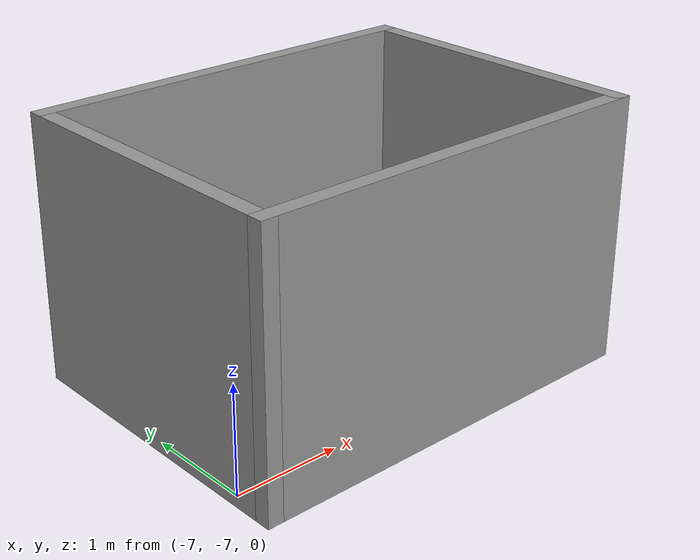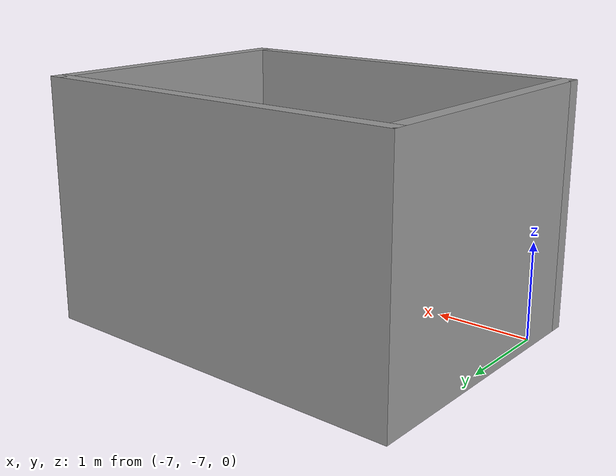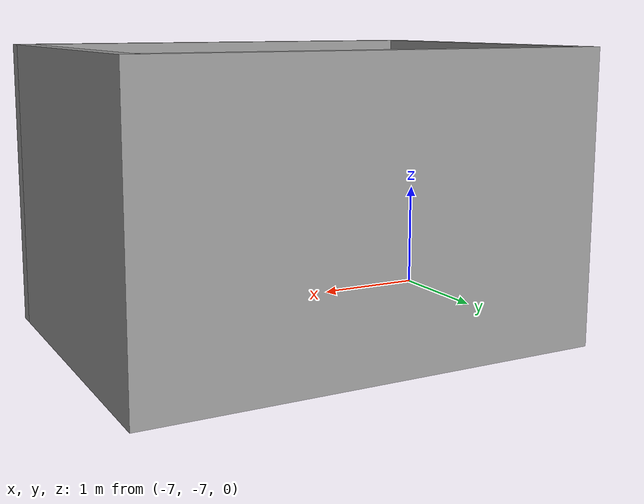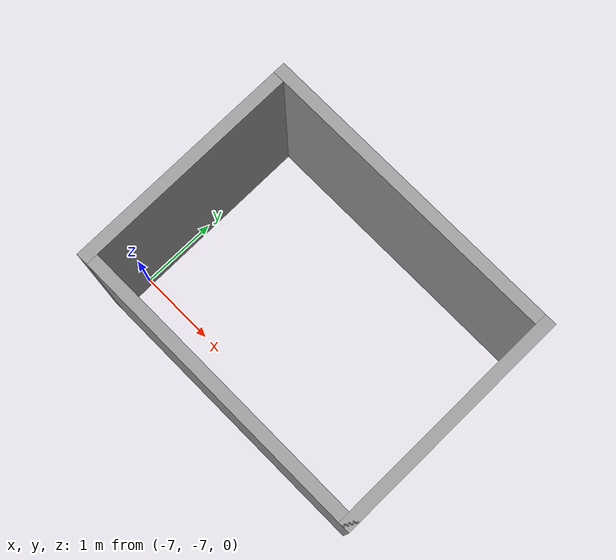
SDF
<?xml version='1.0'?>
<sdf version='1.7'>
  <model name='level0'>
    <pose>-3.54679 -3.74691 0 0 -0 0</pose>
    <link name='Wall_23'>
      <collision name='Wall_23_Collision'>
        <geometry>
          <box>
            <size>4 0.15 2.5</size>
          </box>
        </geometry>
        <pose>0 0 1.25 0 -0 0</pose>
      </collision>
      <visual name='Wall_23_Visual'>
        <pose>0 0 1.25 0 -0 0</pose>
        <geometry>
          <box>
            <size>4 0.15 2.5</size>
          </box>
        </geometry>
        <material>
          <script>
            <uri>file://media/materials/scripts/gazebo.material</uri>
            <name>Gazebo/Grey</name>
          </script>
          <ambient>1 1 1 1</ambient>
        </material>
        <meta>
          <layer>0</layer>
        </meta>
      </visual>
      <pose>-1.54679 -0.821908 0 0 -0 0</pose>
    </link>
    <link name='Wall_24'>
      <collision name='Wall_24_Collision'>
        <geometry>
          <box>
            <size>3 0.15 2.5</size>
          </box>
        </geometry>
        <pose>0 0 1.25 0 -0 0</pose>
      </collision>
      <visual name='Wall_24_Visual'>
        <pose>0 0 1.25 0 -0 0</pose>
        <geometry>
          <box>
            <size>3 0.15 2.5</size>
          </box>
        </geometry>
        <material>
          <script>
            <uri>file://media/materials/scripts/gazebo.material</uri>
            <name>Gazebo/Grey</name>
          </script>
          <ambient>1 1 1 1</ambient>
        </material>
        <meta>
          <layer>0</layer>
        </meta>
      </visual>
      <pose>0.378214 -2.24691 0 0 -0 -1.5708</pose>
    </link>
    <link name='Wall_25'>
      <collision name='Wall_25_Collision'>
        <geometry>
          <box>
            <size>4 0.15 2.5</size>
          </box>
        </geometry>
        <pose>0 0 1.25 0 -0 0</pose>
      </collision>
      <visual name='Wall_25_Visual'>
        <pose>0 0 1.25 0 -0 0</pose>
        <geometry>
          <box>
            <size>4 0.15 2.5</size>
          </box>
        </geometry>
        <material>
          <script>
            <uri>file://media/materials/scripts/gazebo.material</uri>
            <name>Gazebo/Grey</name>
          </script>
          <ambient>1 1 1 1</ambient>
        </material>
        <meta>
          <layer>0</layer>
        </meta>
      </visual>
      <pose>-1.54679 -3.67191 0 0 -0 3.14159</pose>
    </link>
    <link name='Wall_26'>
      <collision name='Wall_26_Collision'>
        <geometry>
          <box>
            <size>3 0.15 2.5</size>
          </box>
        </geometry>
        <pose>0 0 1.25 0 -0 0</pose>
      </collision>
      <visual name='Wall_26_Visual'>
        <pose>0 0 1.25 0 -0 0</pose>
        <geometry>
          <box>
            <size>3 0.15 2.5</size>
          </box>
        </geometry>
        <material>
          <script>
            <uri>file://media/materials/scripts/gazebo.material</uri>
            <name>Gazebo/Grey</name>
          </script>
          <ambient>1 1 1 1</ambient>
        </material>
        <meta>
          <layer>0</layer>
        </meta>
      </visual>
      <pose>-3.47179 -2.24691 0 0 -0 1.5708</pose>
    </link>
    <static>1</static>
  </model>
</sdf>
